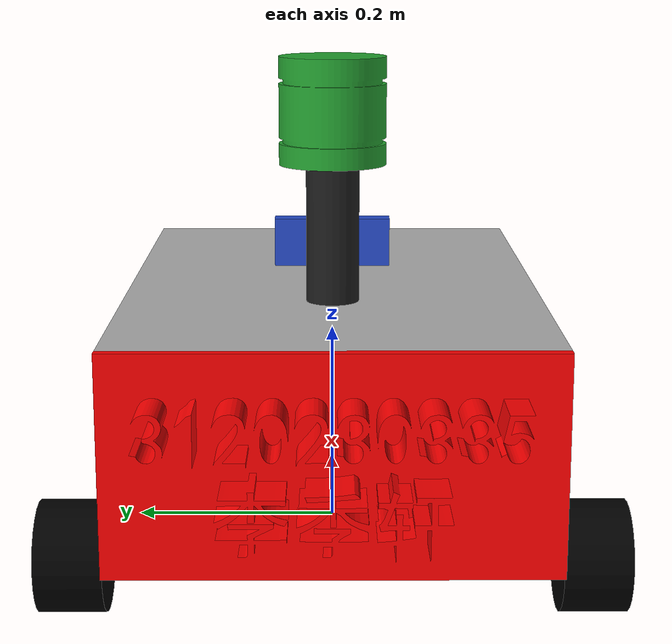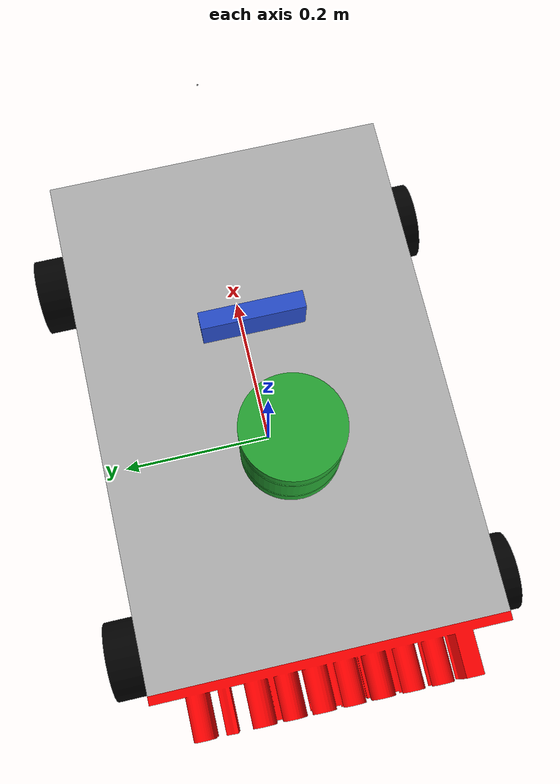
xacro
<robot name="car_total" xmlns:xacro="http://www.ros.org/wiki/xacro">

<!--`````````````````````````````````````````base_footprint`````````````````````````````````````` -->
  <link name="base_footprint">
    <visual>
      <geometry>
        <sphere radius="0.001" />
      </geometry>
    </visual>
  </link>

<!--`````````````````````````````````````````base_link`````````````````````````````````````` -->

  <link name="base_link">
    <visual>
      <geometry>
        <box size="0.6 0.4 0.2" />
      </geometry>
      <origin rpy="0 0 0" xyz="0 0 0"/>
      <material name="gary">
        <color rgba="0.7 0.7 0.7 1.0" />
      </material>
    </visual>

    <collision>
      <origin rpy="0 0 0" xyz="0 0 0"/>
      <geometry>
        <box size="0.6 0.4 0.2" />
      </geometry>
    </collision>

    <inertial>
      <mass value="40" />
      <inertia ixx="1.333" ixy = "0" ixz = "0"
          iyy="1.733" iyz= "0"
          izz="0.6667" />
    </inertial>
  </link>

  <joint name="base_link2base_footprint" type="fixed">
      <parent link="base_footprint" />
      <child link="base_link"/>
      <origin xyz="0 0 0.15" />
  </joint>

  <gazebo reference="base_link">
    <material>Gazebo/Purple</material>
  </gazebo>

<!--`````````````````````````````````````````id_link`````````````````````````````````````` -->

  <link name="id_link">
    <visual>
      <geometry>
        <mesh filename="package://car_gazebo/meshes/id_link.STL"/>
      </geometry>
      <origin rpy="1.5705 0 -1.5705" xyz="0 0 0"/>
      <material name="red">
        <color rgba="1.0 0 0 1.0" />
      </material>
    </visual>

    <collision>
      <origin rpy="1.5705 0 -1.5705" xyz="0 0 0"/>
      <geometry>
        <mesh filename="package://car_gazebo/meshes/id_link.STL"/>
      </geometry>
    </collision>

    <inertial>
      <mass value="4" />
      <inertia ixx="0.1333" ixy = "0" ixz = "0"
          iyy="0.1733" iyz= "0"
          izz="0.06667" />
    </inertial>
  </link>

  <joint name="id2base" type="fixed">
      <parent link="base_link" />
      <child link="id_link"/>
      <origin xyz="-0.3 0.2 -0.1" />
  </joint>

  <gazebo reference="id_link">
    <material>Gazebo/Red</material>
  </gazebo>

<!-- ```````````````````````````sup_link``````````````````````````` -->

  <link name="sup_link">

    <visual>
      <origin rpy="0 0 0" xyz="0 0 0"/>
      <geometry>
        <cylinder radius="0.025" length="0.18" />
      </geometry>
    </visual>
      <material name="black">
        <color rgba="0 0 0 1.0" />
      </material>
  </link>

  <joint name="sup2base" type="fixed">
    <parent link="base_link"/>
    <child link="sup_link"/>
    <origin rpy="0 0 0" xyz="-0.10 0 0.14"/>
  </joint>

  <gazebo reference="sup_link">
    <material>Gazebo/Black</material>
  </gazebo>

<!-- ```````````````````````````laser_link``````````````````````````` -->

  <link name="laser_link">

    <visual>
      <origin rpy="1.5705 0 0" xyz="0 0 0"/>
      <geometry>
        <mesh filename="package://car_gazebo/meshes/laser_link.STL"/>
      </geometry>
    </visual>
      <material name="green">
        <color rgba="0 1.0 0 1.0" />
      </material>
  </link>

  <joint name="laser2base" type="fixed">
    <parent link="base_link"/>
    <child link="laser_link"/>
    <origin rpy="0 0 0" xyz="-0.15 0.05 0.23"/>
  </joint>

  <gazebo reference="laser_link">
    <material>Gazebo/Green</material>
  </gazebo>

  <link name="laser_core">  <!-- the core is for sensor's center is not what i want, so use "core" to tiaozheng center. -->
    <visual>
      <origin rpy="0 0 0" xyz="0 0 0"/>
      <geometry>
        <sphere radius="0.001" />
      </geometry>
    </visual>
  </link>
  <joint name="laser2core" type="fixed">
    <parent link="laser_link"/>
    <child link="laser_core"/>
    <origin rpy="0 0 0" xyz="0.05 -0.05 0.05"/>
  </joint>

<!-- ```````````````````````````camera_link`````````````````````````````` -->

  <link name="camera_link">

    <visual>
      <origin rpy="0 0 0" xyz="0 0 0"/>
      <geometry>
        <box size="0.02 0.12 0.14" />
      </geometry>
    </visual>
      <material name="blue">
        <color rgba="0 0 1.0 1.0" />
      </material>
  </link>

  <joint name="camera2base" type="fixed">
    <parent link="base_link"/>
    <child link="camera_link"/>
    <origin rpy="0 0 0" xyz="0.08 0 0.08"/>
  </joint>

  <gazebo reference="camera_link">
    <material>Gazebo/Blue</material>
  </gazebo>

  <link name="camera_core">  <!-- the core is for sensor's rpy&center is not what i want, so use "core" to tiaozheng rpy&center. -->
    <visual>
      <origin rpy="0 0 0" xyz="0 0 0"/>
      <geometry>
        <sphere radius="0.001" />
      </geometry>
    </visual>
  </link>
  <joint name="camera2core" type="fixed">
    <parent link="camera_link"/>
    <child link="camera_core"/>
    <origin rpy="0 0 0" xyz="0.3 0 0.05"/>
  </joint>

<!--``````````````````````````````````````````` f_l_w_link`````````````````````````````````````````` -->

  <link name="front_left_wheel_link">

    <visual>
      <origin rpy="1.5705 0 0" xyz="0 0 0"/>
      <geometry>
        <cylinder radius="0.05" length="0.06" />
      </geometry>
      <material name="black">
        <color rgba="0 0 0 1.0" />
      </material>
    </visual>

    <collision>
      <origin rpy="1.5705 0 0" xyz="0 0 0"/>
      <geometry>
        <cylinder radius="0.05" length="0.06" />
      </geometry>
    </collision>

    <inertial>
      <mass value="0.1" />
      <inertia ixx="0.0000925" ixy = "0" ixz = "0"
          iyy="0.0000925" iyz = "0"
          izz="0.000125" />
    </inertial>
  </link>

  <joint name="front_left_wheel" type="continuous">
    <parent link="base_link"/>
    <child link="front_left_wheel_link"/>
    <origin xyz="0.25 0.23 -0.10"/>
    <axis xyz="0 1 0"/>
  </joint>

  <gazebo reference="front_left_wheel_link">
    <material>Gazebo/Black</material>
  </gazebo>

<!-- ```````````````````````````````r_l_w_link````````````````````````````` -->

  <link name="rear_left_wheel_link">

    <visual>
      <origin rpy="1.5705 0 0" xyz="0 0 0"/>
      <geometry>
        <cylinder radius="0.05" length="0.06" />
      </geometry>
      <material name="black">
        <color rgba="0 0 0 1.0" />
      </material>
    </visual>

    <collision>
      <origin rpy="1.5705 0 0" xyz="0 0 0"/>
      <geometry>
        <cylinder radius="0.05" length="0.06" />
      </geometry>
    </collision>

    <inertial>
      <mass value="0.1" />
      <inertia ixx="0.0000925" ixy = "0" ixz = "0"
          iyy="0.0000925" iyz = "0"
          izz="0.000125" />
    </inertial>
  </link>

  <joint name="rear_left_wheel" type="continuous">
    <parent link="base_link"/>
    <child link="rear_left_wheel_link"/>
    <origin xyz="-0.25 0.23 -0.10"/>
    <axis xyz="0 1 0"/>
  </joint>

  <gazebo reference="rear_left_wheel_link">
    <material>Gazebo/Black</material>
  </gazebo>

<!-- ````````````````````````````````f_r_w_link``````````````````````````````` -->

  <link name="front_right_wheel_link">

    <visual>
      <origin rpy="1.5705 0 0" xyz="0 0 0"/>
      <geometry>
        <cylinder radius="0.05" length="0.06" />
      </geometry>
      <material name="black">
        <color rgba="0 0 0 1.0" />
      </material>
    </visual>

    <collision>
      <origin rpy="1.5705 0 0" xyz="0 0 0"/>
      <geometry>
        <cylinder radius="0.05" length="0.06" />
      </geometry>
    </collision>

    <inertial>
      <mass value="0.1" />
      <inertia ixx="0.0000925" ixy = "0" ixz = "0"
          iyy="0.0000925" iyz = "0"
          izz="0.000125" />
    </inertial>

  </link>

  <joint name="front_right_wheel" type="continuous">
    <parent link="base_link"/>
    <child link="front_right_wheel_link"/>
    <origin xyz="0.25 -0.23 -0.10"/>
    <axis xyz="0 1 0"/>
  </joint>

  <gazebo reference="front_right_wheel_link">
    <material>Gazebo/Black</material>
  </gazebo>

<!-- ````````````````````````````````r_r_w_link````````````````````````````` -->

  <link name="rear_right_wheel_link">

    <visual>
      <origin rpy="1.5705 0 0" xyz="0 0 0"/>
      <geometry>
        <cylinder radius="0.05" length="0.06" />
      </geometry>
      <material name="black">
        <color rgba="0 0 0 1.0" />
      </material>
    </visual>

    <collision>
      <origin rpy="1.5705 0 0" xyz="0 0 0"/>
      <geometry>
        <cylinder radius="0.05" length="0.06" />
      </geometry>
    </collision>

    <inertial>
      <mass value="0.1" />
      <inertia ixx="0.0000925" ixy = "0" ixz = "0"
          iyy="0.0000925" iyz = "0"
          izz="0.000125" />
    </inertial>

  </link>

  <joint name="rear_right_wheel" type="continuous">
    <parent link="base_link"/>
    <child link="rear_right_wheel_link"/>
    <origin xyz="-0.25 -0.23 -0.10"/>
    <axis xyz="0 1 0"/>
  </joint>

  <gazebo reference="rear_right_wheel_link">
    <material>Gazebo/Black</material>
  </gazebo>

<!-- `````````````````````````````````````move`````````````````````````````````````` -->

  <transmission name="front_right_wheel_trans" type="SimpleTransmission">
    <type>transmission_interface/SimpleTransmission</type>
    <actuator name="front_right_wheel_motor">
      <mechanicalReduction>1</mechanicalReduction>
    </actuator>
    <joint name="front_right_wheel">
      <hardwareInterface>hardware_interface/VelocityJointInterface</hardwareInterface>
    </joint>
  </transmission>

  <transmission name="front_left_wheel_trans" type="SimpleTransmission">
    <type>transmission_interface/SimpleTransmission</type>
    <actuator name="front_left_wheel_motor">
      <mechanicalReduction>1</mechanicalReduction>
    </actuator>
    <joint name="front_left_wheel">
      <hardwareInterface>hardware_interface/VelocityJointInterface</hardwareInterface>
    </joint>
  </transmission>

  <transmission name="rear_left_wheel_trans" type="SimpleTransmission">
    <type>transmission_interface/SimpleTransmission</type>
    <actuator name="rear_left_wheel_motor">
      <mechanicalReduction>1</mechanicalReduction>
    </actuator>
    <joint name="rear_left_wheel">
      <hardwareInterface>hardware_interface/VelocityJointInterface</hardwareInterface>
    </joint>
  </transmission>

  <transmission name="rear_right_wheel_trans" type="SimpleTransmission">
    <type>transmission_interface/SimpleTransmission</type>
    <actuator name="rear_right_wheel_motor">
      <mechanicalReduction>1</mechanicalReduction>
    </actuator>
    <joint name="rear_right_wheel">
      <hardwareInterface>hardware_interface/VelocityJointInterface</hardwareInterface>
    </joint>
  </transmission>

  <!-- Controller configurations -->
  <gazebo>
    <plugin filename="libgazebo_ros_control.so" name="gazebo_ros_control">
      <robotNamespace>/</robotNamespace>
    </plugin>
  </gazebo>

  <!-- kp spring constant, kd damping constant -->
  <gazebo>
    <mu1 value="1.0"/>
    <mu2 value="0.9"/>
    <kp value="10000000.0"/>
    <kd value="1.0"/>
    <fdir1 value="1 0 0"/>
    <minDepth value="0.001"/>
    <maxContacts value="64"/>
  </gazebo>

  <gazebo>
        <plugin name="skid_steer_drive_controller" filename="libgazebo_ros_skid_steer_drive.so">
            <updateRate>100.0</updateRate>
            <robotNamespace></robotNamespace>
            <leftFrontJoint>front_left_wheel</leftFrontJoint>
            <rightFrontJoint>front_right_wheel</rightFrontJoint>
            <leftRearJoint>rear_left_wheel</leftRearJoint>
            <rightRearJoint>rear_right_wheel</rightRearJoint>
            <wheelSeparation>4</wheelSeparation>
            <wheelDiameter>0.32918</wheelDiameter>
            <robotBaseFrame>base_footprint</robotBaseFrame><!-- base_link is the origin, reset!!!-->
            <torque>5000</torque> <!-- 1000 is the origin-->
            <commandTopic>cmd_vel</commandTopic>
            <broadcastTF>true</broadcastTF>
            <odometryTopic>odom</odometryTopic>
            <odometryFrame>odom</odometryFrame>
            <covariance_x>0.000100</covariance_x>
            <covariance_y>0.000100</covariance_y>
            <covariance_yaw>0.010000</covariance_yaw>
        </plugin>
    </gazebo>

  <gazebo>
        <plugin name="object_controller" filename="libgazebo_ros_planar_move.so">
            <commandTopic>cmd_vel</commandTopic>
            <odometryTopic>odom</odometryTopic>
            <odometryFrame>odom</odometryFrame>
            <odometryRate>20.0</odometryRate>
            <robotBaseFrame>base_footprint</robotBaseFrame>
        </plugin>
    </gazebo>

<!-- ``````````````````````````````````````````laser``````````````````````````````````````` -->

      <xacro:include filename = "gazebo/laser.xacro"  />

<!-- `````````````````````````````````````````kinect````````````````````````````````````````` -->

    <xacro:include filename = "gazebo/kinect.xacro"  />

</robot>
